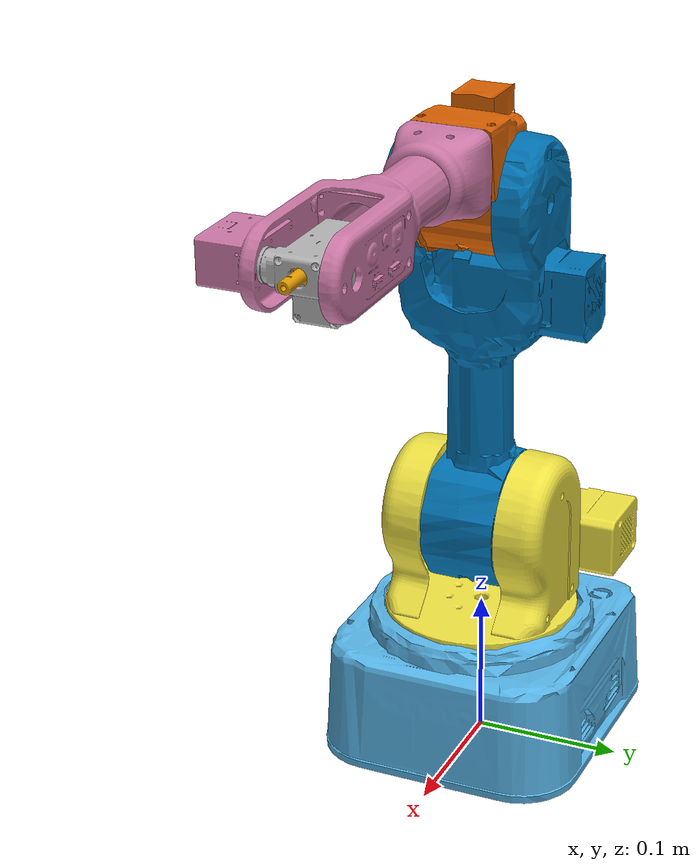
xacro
<?xml version="1.0"?>
<robot xmlns:xacro="http://www.ros.org/wiki/xacro" name="niryo_ned3pro">
    <!-- Import Properties -->
    <xacro:include filename="$(find niryo_robot_description)/urdf/ned3pro/niryo_ned3pro_param.urdf.xacro" />

    <!-- Links -->

    <link name="world" />

    <link name="base_link">
        <inertial>
            <origin xyz="-0.00437 -0.00535 0.0254" rpy="0 0 0" />
            <mass value="3.70" />
            <inertia ixx="0.01627370211" ixy="0.0" ixz="0.0" iyy="0.01633345071" iyz="0.0"
                izz="0.0254462446" />
        </inertial>
        <visual>
            <origin xyz="0 0 0" rpy="0 0 0" />
            <geometry>
                <mesh filename="package://niryo_robot_description/meshes/ned3pro/stl/base_link.STL" />
            </geometry>
        </visual>
        <collision>
            <origin xyz="0 0 0" rpy="0 0 0" />
            <geometry>
                <mesh filename="package://niryo_robot_description/meshes/ned3pro/stl/base_link.STL" />
            </geometry>
        </collision>
    </link>

    <link name="led_ring_link">
    </link>

    <link name="shoulder_link">
        <inertial>
            <origin xyz="0.01176 0.03686 0.05004" rpy="0 0 0" />
            <mass value="1.018" />
            <inertia ixx="0.00274167942" ixy="0.0" ixz="0.0" iyy="0.00195272317" iyz="0.0"
                izz="0.00292927208" />
        </inertial>
        <visual>
            <origin xyz="0 0 0" rpy="0 0 0" />
            <geometry>
                <mesh
                    filename="package://niryo_robot_description/meshes/ned3pro/stl/shoulder_link.STL" />
            </geometry>
        </visual>
        <collision>
            <origin xyz="0 0 0" rpy="0 0 0" />
            <geometry>
                <mesh filename="package://niryo_robot_description/meshes/ned3pro/stl/shoulder_link.STL" />
            </geometry>
        </collision>
    </link>

    <link name="arm_link">
        <inertial>
            <origin xyz="0.12272 0.00524 -0.00850" rpy="0 0 0" />
            <mass value="1.0" />
            <inertia ixx="0.00148330442" ixy="0.0" ixz="0.0" iyy="0.00937134365" iyz="0.0"
                izz="0.00879836087" />
        </inertial>
        <visual>
            <origin xyz="0 0 0" rpy="0 0 ${PI}" />
            <geometry>
                <mesh filename="package://niryo_robot_description/meshes/ned3pro/stl/arm_link.STL" />
            </geometry>
        </visual>
        <collision>
            <origin xyz="0 0 0" rpy="0 0 ${PI}" />
            <geometry>
                <mesh filename="package://niryo_robot_description/meshes/ned3pro/stl/arm_link.STL" />
            </geometry>
        </collision>
    </link>

    <link name="elbow_link">
        <inertial>
            <origin xyz="0.01691 0.00297 -0.00754" rpy="0 0 0" />
            <mass value="0.350" />
            <inertia ixx="0.00033180114" ixy="0.0" ixz="0.0" iyy="0.00039973587" iyz="0.0"
                izz="0.00043216299" />
        </inertial>
        <visual>
            <origin xyz="0 0 0" rpy="${PI} 0 ${-PI/2}" />
            <geometry>
                <mesh
                    filename="package://niryo_robot_description/meshes/ned3pro/stl/elbow_link.STL" />
            </geometry>
        </visual>
        <collision>
            <origin xyz="0 0 0" rpy="${PI} 0 ${-PI/2}" />
            <geometry>
                <mesh filename="package://niryo_robot_description/meshes/ned3pro/stl/elbow_link.STL" />
            </geometry>
        </collision>
    </link>

    <link name="forearm_link">
        <inertial>
            <origin xyz="0.00020 0.01040 0.15904" rpy="0 0 0" />
            <mass value="0.35538" />
            <inertia ixx="0.00199244039" ixy="0.0" ixz="0.0" iyy="0.00181907606" iyz="0.0"
                izz="0.00029473313" />
        </inertial>
        <visual>
            <origin xyz="0 0 0" rpy="${PI} 0 0" />
            <geometry>
                <mesh
                    filename="package://niryo_robot_description/meshes/ned3pro/stl/forearm_link.STL" />
            </geometry>
        </visual>
        <collision>
            <origin xyz="0 0 0" rpy="${PI} 0 0" />
            <geometry>
                <mesh filename="package://niryo_robot_description/meshes/ned3pro/stl/forearm_link.STL" />
            </geometry>
        </collision>
    </link>

    <link name="wrist_link">
        <inertial>
            <origin xyz="-0.00490 -0.00622 0.00048" rpy="0 0 0" />
            <mass value="0.19887" />
            <inertia ixx="0.00006072214" ixy="0.0" ixz="0.0" iyy="0.00018104057" iyz="0.0"
                izz="0.00019643162" />
        </inertial>
        <visual>
            <origin xyz="0 0 0"
                rpy="0 0 ${PI/2}" />
            <geometry>
                <mesh
                    filename="package://niryo_robot_description/meshes/ned3pro/stl/wrist_link.STL" />
            </geometry>
        </visual>
        <collision>
            <origin xyz="0 0 0"
                rpy="0 0 ${PI/2}" />
            <geometry>
                <mesh filename="package://niryo_robot_description/meshes/ned3pro/stl/wrist_link.STL" />
            </geometry>
        </collision>
    </link>

    <link name="hand_link">
        <inertial>
            <origin xyz="-0.00004 0 -0.00035" rpy="0 0 0" />
            <mass value="0.01083" />
            <inertia ixx="0.00000138319" ixy="0.0" ixz="0.0" iyy="0.00000138107" iyz="0.0"
                izz="0.00000040812" />
        </inertial>
        <visual>
            <origin xyz="0 0 0" rpy="0 0 0" />
            <geometry>
                <mesh filename="package://niryo_robot_description/meshes/ned3pro/stl/hand_link.STL" />
            </geometry>
        </visual>
        <collision>
            <origin xyz="0 0 0" rpy="0 0 0" />
            <geometry>
                <mesh filename="package://niryo_robot_description/meshes/ned3pro/stl/hand_link.STL" />
            </geometry>
        </collision>
    </link>

    <link name="tool_link">
    </link>

    <!-- Joints -->

    <joint name="joint_world" type="fixed">
        <parent link="world" />
        <child link="base_link" />
        <origin xyz="0 0 0" rpy="0 0 0" />
    </joint>

    <joint name="joint_1" type="revolute">
        <origin xyz="0 0 0.0748" rpy="0 0 0" />
        <parent link="base_link" />
        <child link="shoulder_link" />
        <axis xyz="0 0 1" />
        <limit effort="10.0" velocity="10.0"
            lower="${(limit_low_shoulder_rotation +
        safety_pos_margin)}"
            upper="${(limit_up_shoulder_rotation - safety_pos_margin)}" />
    </joint>

    <joint name="joint_2" type="revolute">
        <origin xyz="0 0 0.0925" rpy="${PI/2} 0 0" />
        <parent link="shoulder_link" />
        <child link="arm_link" />
        <axis xyz="0 0 1" />
        <limit effort="10.0" velocity="8.0"
            lower="${(limit_low_arm_rotation +
        safety_pos_margin)}"
            upper="${(limit_up_arm_rotation - safety_pos_margin)}" />
    </joint>

    <joint name="joint_3" type="revolute">
        <origin xyz="0.012 0.23031 0" rpy="0 0 ${PI/2}" />
        <parent link="arm_link" />
        <child link="elbow_link" />
        <axis xyz="0 0 1" />
        <limit effort="7.0" velocity="8.0"
            lower="${(limit_low_elbow_rotation +
        safety_pos_margin)}"
            upper="${(limit_up_elbow_rotation - safety_pos_margin)}" />
    </joint>

    <joint name="joint_4" type="revolute">
        <origin xyz="0.0325 0 0" rpy="${PI/2} 0 0" />
        <parent link="elbow_link" />
        <child link="forearm_link" />
        <axis xyz="0 0 1" />
        <limit effort="7.0" velocity="2.0"
            lower="${(limit_low_forearm_rotation + safety_pos_margin)}"
            upper="${(limit_up_forearm_rotation - safety_pos_margin)}" />
    </joint>

    <joint name="joint_5" type="revolute">
        <origin xyz="0 0 0.23975" rpy="${-PI/2} 0 0" />
        <parent link="forearm_link" />
        <child link="wrist_link" />
        <axis xyz="0 0 1" />
        <limit effort="6.0" velocity="2.0"
            lower="${(limit_low_wrist_rotation + safety_pos_margin)}"
            upper="${(limit_up_wrist_rotation - safety_pos_margin)}" />
    </joint>

    <joint name="joint_6" type="revolute">
        <origin xyz="0 0 0" rpy="${PI/2} 0 0" />
        <parent link="wrist_link" />
        <child link="hand_link" />
        <axis xyz="0 0 1" />
        <limit effort="5.0" velocity="2.0"
            lower="${(limit_low_hand_rotation + safety_pos_margin)}"
            upper="${(limit_up_hand_rotation - safety_pos_margin)}" />
    </joint>

    <joint name="hand_tool_joint" type="fixed">
        <parent link="hand_link" />
        <child link="tool_link" />
        <origin xyz="0 0 ${distance_hand_tool}" rpy="${PI} -${PI/2} 0" />
    </joint>

    <joint name="joint_led_ring" type="fixed">
        <parent link="world" />
        <child link="led_ring_link" />
        <origin xyz="0 0 0.0933" rpy="0 0 0" />
    </joint>

</robot>

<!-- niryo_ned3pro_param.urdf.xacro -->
<robot xmlns:xacro="http://www.ros.org/wiki/xacro" name="niryo_ned3pro">
    <xacro:property name="PI" value="3.14159265359"/>

    <!-- Properties -->

    <xacro:property name="distance_hand_tool" value="0.0275"/>

    <xacro:property name="limit_low_shoulder_rotation" value="-2.96"/>
    <xacro:property name="limit_up_shoulder_rotation" value="2.96"/>
    <xacro:property name="limit_low_arm_rotation" value="-1.75"/>
    <xacro:property name="limit_up_arm_rotation" value="0.44"/>
    <xacro:property name="limit_low_elbow_rotation" value="-1.22"/>
    <xacro:property name="limit_up_elbow_rotation" value="1.57"/>
    <xacro:property name="limit_low_forearm_rotation" value="-2.09"/>
    <xacro:property name="limit_up_forearm_rotation" value="2.09"/>
    <xacro:property name="limit_low_wrist_rotation" value="-1.92"/>
    <xacro:property name="limit_up_wrist_rotation" value="1.92"/>
    <xacro:property name="limit_low_hand_rotation" value="-3.14"/>
    <xacro:property name="limit_up_hand_rotation" value="3.14"/>

    <xacro:property name="safety_pos_margin" value="0.0"/>

</robot>
